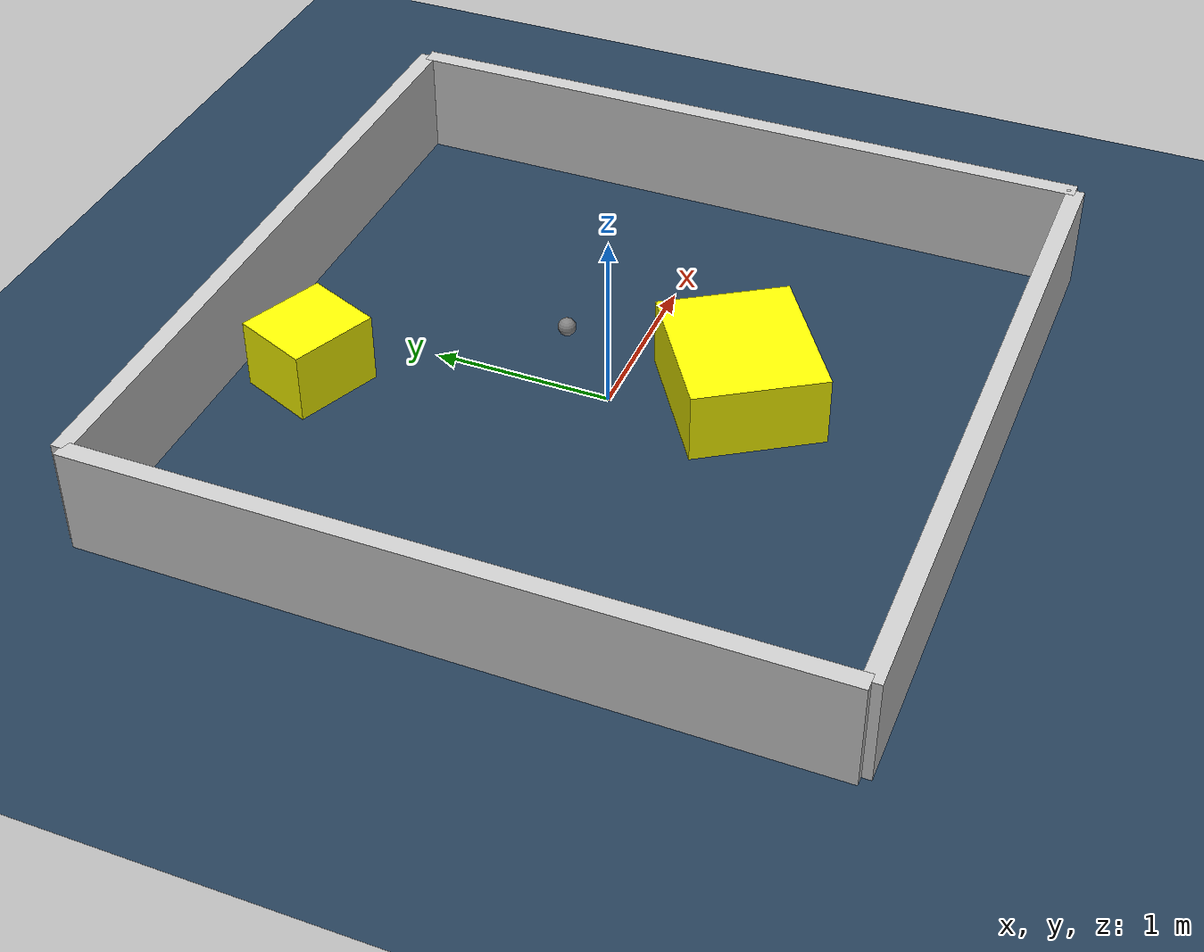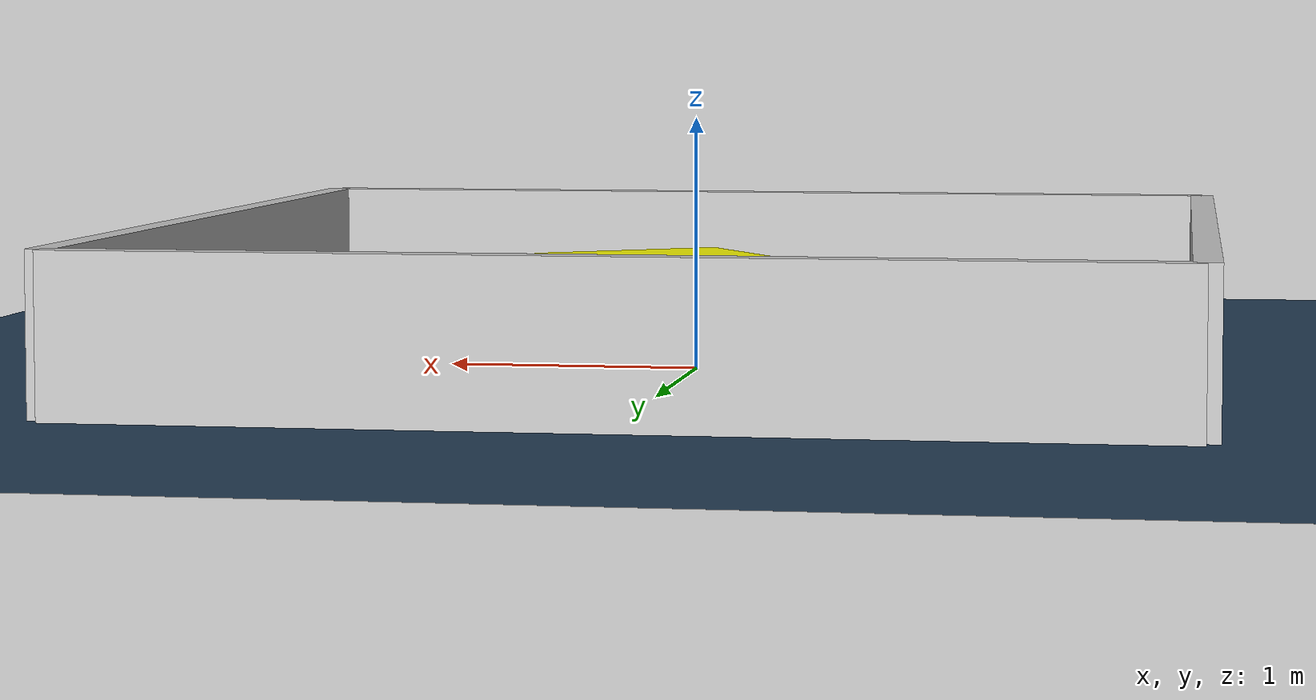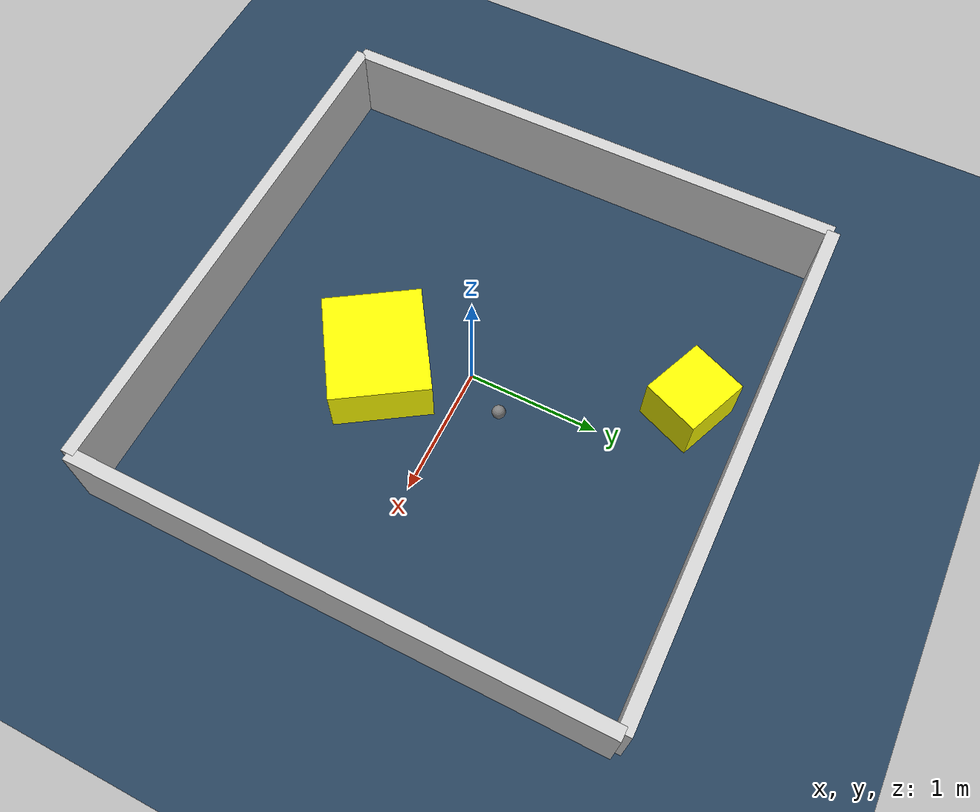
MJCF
<?xml version="1.0" ?>
<mujoco model="generated_environment">
  <option timestep="0.01" integrator="RK4" cone="elliptic"/>
  <default>
    <geom density="1"/>
  </default>
  <asset>
    <texture builtin="gradient" height="3072" rgb1="0.3 0.5 0.7" rgb2="0 0 0" type="skybox" width="512"/>
    <texture builtin="checker" height="300" mark="edge" markrgb="0.8 0.8 0.8" name="groundplane" rgb1="0.2 0.3 0.4" rgb2="0.1 0.2 0.3" type="2d" width="300"/>
    <material name="groundplane" reflectance="0.2" texrepeat="5 5" texture="groundplane" texuniform="true"/>
    <material name="robot" rgba="0.0 1.0 0.0 1"/>
  </asset>
  <worldbody>
    <light dir="0 0 -1" directional="true" pos="0 0 1.5"/>
    <geom condim="4" friction="1.0 0.005 0.001" material="groundplane" name="floor" size="0 0 0.05" type="plane"/>
    <body name="walls">
      <geom name="wall_1" condim="4" pos="-2.0 0.0 0.3" rgba="0.800000011920929 0.800000011920929 0.800000011920929 1.0" size="0.05 2.0 0.3" type="box"/>
      <geom name="wall_2" condim="4" pos="2.0 0.0 0.3" rgba="0.800000011920929 0.800000011920929 0.800000011920929 1.0" size="0.05 2.0 0.3" type="box"/>
      <geom name="wall_3" condim="4" pos="0.0 -2.0 0.3" rgba="0.800000011920929 0.800000011920929 0.800000011920929 1.0" size="2.0 0.05 0.3" type="box"/>
      <geom name="wall_4" condim="4" pos="0.0 2.0 0.3" rgba="0.800000011920929 0.800000011920929 0.800000011920929 1.0" size="2.0 0.05 0.3" type="box"/>
    </body>
    <body name="robot">
      <joint name="joint_x" type="slide" pos="0 0 0" axis="1 0 0"/>
      <joint name="joint_y" type="slide" pos="0 0 0" axis="0 1 0"/>
      <geom name="robot" type="sphere" pos="0.26505869880305255 0.3488374516594379 0.2" size="0.05" mass="5." friction="1.0 0.005 0.0001" condim="4"/>
      <site name="sensor_ball"/>
    </body>
    <body name="obstacle_1_movable">
      <geom name="obstacle_1_movable" condim="4" pos="0.25420730094606325 -0.6476302268838459 0.2" euler="0 0 123.16311153217013" friction="1.0 0.005 0.001" rgba="1 1 0 1" size="0.3705469784798243 0.42105808279560175 0.2" type="box" mass="0.1"/>
      <joint type="free"/>
    </body>
    <body name="obstacle_2_movable">
      <geom name="obstacle_2_movable" condim="4" pos="-0.44436109609952346 1.5380599604416723 0.2" euler="0 0 157.60692424808232" friction="1.0 0.005 0.001" rgba="1 1 0 1" size="0.25384113884969567 0.22357991717749895 0.2" type="box" mass="0.1"/>
      <joint type="free"/>
    </body>
  </worldbody>
  <actuator>
    <motor name="actuator_x" joint="joint_x" gear="1" ctrlrange="-1 1"/>
    <motor name="actuator_y" joint="joint_y" gear="1" ctrlrange="-1 1"/>
  </actuator>
</mujoco>
